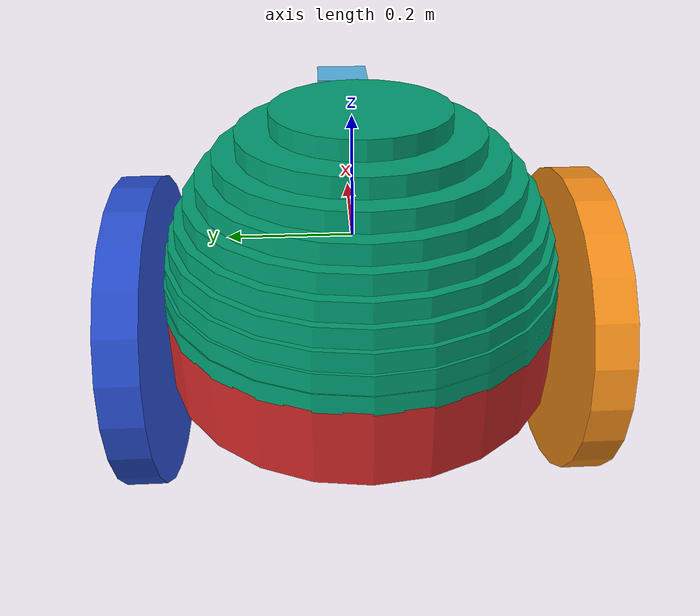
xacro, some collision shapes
<?xml version="1.0"?>

<robot name="my_robot" xmlns:xacro="http://www.ros.org/wiki/xacro">

  <!-- Include differential drive, camera, and lidar -->
  <xacro:include filename="$(find my_robot)/urdf/my_robot.gazebo" />

  <!-- Calculate inertia of box (and approximate cylinders and spheres) -->
  <!-- Got this from https://kiranpalla.com/autonomous-navigation-ros-differential-drive-robot-simulation/describing-ros-robot-with-urdf/ -->
  <xacro:macro name="box_inertia" params="m w h d">
    <inertial>
      <mass value="${m}"/>
      <inertia ixx="${m / 12.0 * (d*d + h*h)}" ixy="0.0" ixz="0.0" iyy="${m / 12.0 * (w*w + h*h)}" iyz="0.0" izz="${m / 12.0 * (w*w + d*d)}"/>
    </inertial>
  </xacro:macro>

  <!-- Create a disc (cylinder) for visuals and collisions -->
  <xacro:macro name="disc" params="px py pz _or op oy rad len">
      <origin xyz="${px} ${py} ${pz}" rpy="${_or} ${op} ${oy}" />
      <geometry>
        <cylinder radius="${rad}" length="${len}" />
      </geometry>
  </xacro:macro>

  <!-- Create a hemisphere of a given radius -->
  <xacro:macro name="hemisphere" params="_x _y _z _or _op _oy R disc_height">
    <xacro:hemi _x="${_x}" _y="${_y}" _z="${R - disc_height}" _or="${_or}" _op="${_op}" _oy="${_oy}" R="${R}" disc_height="${disc_height}" step="${R / disc_height}" />
  </xacro:macro>

  <xacro:macro name="hemi" params="_x _y _z _or _op _oy R disc_height step">
    <xacro:property name="r" value="${sqrt((R * R) - (_z * _z))}" />
    <visual name="body_visual">
      <xacro:disc px="${_x}" py="${_y}" pz="${_z}" _or="${_or}" op="${_op}" oy="${_oy}" rad="${r}" len="${disc_height}" />
    </visual>

    <xacro:if value="${step - 1}">
      <xacro:hemi _x="${_x}" _y="${_y}" _z="${_z - disc_height}" _or="${_or}" _op="${_op}" _oy="${_oy}" R="${R}" disc_height="${disc_height}" step="${step - 1}" />
    </xacro:if>
  </xacro:macro>

  <!-- Create a leg consisting of a cylinder and a spherical caster -->
  <xacro:macro name="leg" params="pos _x">
  <joint name="leg_${pos}_joint" type="fixed">
    <origin xyz="${_x} 0 -0.0625" rpy="0 0 0" />
    <parent link="body"/>
    <child link="leg_${pos}" />
  </joint>

  <link name="leg_${pos}">
    <visual name="leg_${pos}_visual">
      <xacro:disc px="0" py="0" pz="0" _or="0" op="0" oy="0" rad="0.05" len="0.2" />
    </visual>

    <collision name="leg_${pos}_collision">
      <xacro:disc px="0" py="0" pz="0" _or="0" op="0" oy="0" rad="0.05" len="0.2" />
    </collision>

    <xacro:box_inertia m="1" w="0.05" h="0.05" d="0.1"/>
  </link>

  <joint name="caster_${pos}_joint" type="fixed">
    <origin xyz="0 0 -0.0875" rpy="0 0 0" />
    <parent link="leg_${pos}"/>
    <child link="caster_${pos}" />
  </joint>

  <link name="caster_${pos}">
    <visual name="caster_${pos}_visual">
      <origin xyz="0 0 0" rpy="0 0 0"/>
      <geometry>
        <sphere radius="0.05" />
      </geometry>
    </visual>

    <collision name="caster_${pos}_collision">
      <origin xyz="0 0 0" rpy="0 0 0"/>
      <geometry>
        <sphere radius="0.05" />
      </geometry>
    </collision>

    <xacro:box_inertia m="0.1" w="0.05" h="0.05" d="0.05"/>
  </link>
  </xacro:macro>

  <!-- Wheel -->
  <xacro:macro name="wheel" params="_name _x _y">
    <xacro:property name="wheel_radius" value="0.2" />
    <xacro:property name="wheel_width" value="0.05" />

    <joint name="${_name}_wheel_joint" type="continuous">
      <origin xyz="${_x} ${_y} 0" rpy="1.5707 0 0" />
      <parent link="body" />
      <child link="${_name}_wheel" />
      <axis xyz="0 0 -1" rpy="0 0 0" />
      <limit effort="10000" velocity="1000" />
      <dynamics damping="1.0" friction="1.0" />
    </joint>

    <link name="${_name}_wheel">
      <visual name="${_name}_wheel_visual">
        <xacro:disc px="0" py="0" pz="0" _or="0" op="0" oy="0" rad="${wheel_radius}" len="${wheel_width}" />
      </visual>

      <collision name="${_name}_wheel_collision">
        <xacro:disc px="0" py="0" pz="0" _or="0" op="0" oy="0" rad="${wheel_radius}" len="${wheel_width}" />
      </collision>

      <xacro:box_inertia m="5" w="${wheel_radius}" h="${wheel_radius}" d="${wheel_width}"/>
    </link>

  </xacro:macro>

  <!-- Body -->
  <link name="robot_footprint"></link>

  <joint name="robot_footprint_joint" type="fixed">
    <origin xyz="0 0 0" rpy="0 0 0" />
    <parent link="robot_footprint" />
    <child link="body" />
  </joint>

  <link name="body">
    <visual name="body_visual">
      <origin xyz="0 0 0" rpy=" 0 0 0"/>
      <geometry>
        <box size=".5 .5 .1"/>
      </geometry>
    </visual>
    <visual name="body_visual">
      <origin xyz="0.25 0 0" rpy="0 0 1.5707"/>
      <geometry>
        <cylinder radius="0.25" length="0.1"/>
      </geometry>
    </visual>
    <visual name="body_visual">
      <origin xyz="-0.25 0 0" rpy="0 0 1.5707"/>
      <geometry>
        <cylinder radius="0.25" length="0.1"/>
      </geometry>
    </visual>

    <collision name="collision">
      <origin xyz="0 0 0" rpy=" 0 0 0"/>
      <geometry>
        <box size="1.0 0.5 0.1"/>
      </geometry>
    </collision>

    <xacro:box_inertia m="10" w="0.5" h="0.5" d="0.1"/>
  </link>

  <!-- Dome -->
  <joint name="dome_joint" type="fixed">
    <origin xyz="-.25 0 0.06" rpy="0 0 0" />
    <parent link="body" />
    <child link="dome" />
  </joint>

  <link name="dome">
    <xacro:hemisphere _x="0" _y="0" _z="0" _or="0" _op="0" _oy="0" R="0.25" disc_height="0.025" />

    <!-- Approximate box shape for ease of computation -->
    <collision name="dome_collision">
      <origin xyz="0 0 0" rpy=" 0 0 0"/>
      <geometry>
        <box size=".25 .25 .25"/>
      </geometry>
    </collision>

    <xacro:box_inertia m="5" w="0.25" h="0.25" d="0.25" />
  </link>

  <!-- Wheels -->
  <xacro:wheel _name="back_left" _x="-0.25" _y="0.275" />
  <xacro:wheel _name="back_right" _x="-0.25" _y="-0.275" />

  <!-- Caster legs -->
  <xacro:leg pos="front" _x="0.3" />

  <!-- Camera -->
  <joint name="camera_joint" type="fixed">
    <origin xyz="0.5 0 0.025" rpy="0 0 0"/>
    <parent link="body"/>
    <child link="camera"/>
    <axis xyz="0 1 0" rpy="0 0 0"/>
  </joint>

  <link name="camera">
    <visual name="camera_visual">
      <origin xyz="0 0 0" rpy="0 0 0"/>
      <geometry>
        <sphere radius="0.025" />
      </geometry>
    </visual>

    <collision name="camera_collision">
      <origin xyz="0 0 0" rpy="0 0 0"/>
      <geometry>
        <sphere radius="0.025" />
      </geometry>
    </collision>

    <inertial>
      <mass value="1e-5"/>
      <origin xyz="0.0 0 0" rpy=" 0 0 0"/>
      <inertia ixx="1e-6" ixy="0" ixz="0" iyy="1e-6" iyz="0" izz="1e-6" />
    </inertial>
  </link>

 <!-- RGBD Camera -->
   <joint name="camera_optical_joint" type="fixed">
    <origin xyz="0 0 0" rpy="-1.5707 0 -1.5707"/>
    <parent link="camera"/>
    <child link="camera_link_optical"/>
  </joint>

  <link name="camera_link_optical">
  </link>

  <!-- LIDAR -->
  <joint name="hokuyo_joint" type="fixed">
    <origin xyz="0.45 0 0.085" rpy="0 0 0"/>
    <parent link="body"/>
    <child link="hokuyo"/>
    <axis xyz="0 0 0" rpy="0 0 0"/>
  </joint>

  <link name="hokuyo">
    <visual name="hokuyo_visual">
      <origin xyz="0 0 0" rpy="0 0 0"/>
      <geometry>
        <mesh filename="package://my_robot/meshes/hokuyo.dae"/>
      </geometry>
    </visual>

    <collision name="hokuyo_collision">
      <origin xyz="0 0 0" rpy="0 0 0"/>
      <geometry>
        <box size="0.1 0.1 0.1"/>
      </geometry>
    </collision>

    <inertial>
      <mass value="1e-5"/>
      <origin xyz="0.0 0 0" rpy=" 0 0 0"/>
      <inertia ixx="1e-6" ixy="0" ixz="0" iyy="1e-6" iyz="0" izz="1e-6" />
    </inertial>
  </link>

  <gazebo reference="body">
    <material>Gazebo/Red</material>
  </gazebo>
  <gazebo reference="bow">
    <material>Gazebo/Red</material>
  </gazebo>
  <gazebo reference="stern">
    <material>Gazebo/Red</material>
  </gazebo>

  <gazebo reference="back_left_wheel">
    <material>Gazebo/Blue</material>
  </gazebo>
  <gazebo reference="back_right_wheel">
    <material>Gazebo/Orange</material>
  </gazebo>

  <gazebo reference="camera">
    <material>Gazebo/Green</material>
  </gazebo>

  <gazebo reference="leg_front">
    <material>Gazebo/Yellow</material>
  </gazebo>

  <gazebo reference="leg_back">
    <material>Gazebo/Yellow</material>
  </gazebo>

  <gazebo reference="caster_front">
    <material>Gazebo/Yellow</material>
    <mu1 value="0.5"/>
    <mu2 value="0.5"/>
  </gazebo>

  <gazebo reference="caster_back">
    <material>Gazebo/Yellow</material>
    <mu1 value="0.0"/>
    <mu2 value="0.0"/>
  </gazebo>

</robot>
